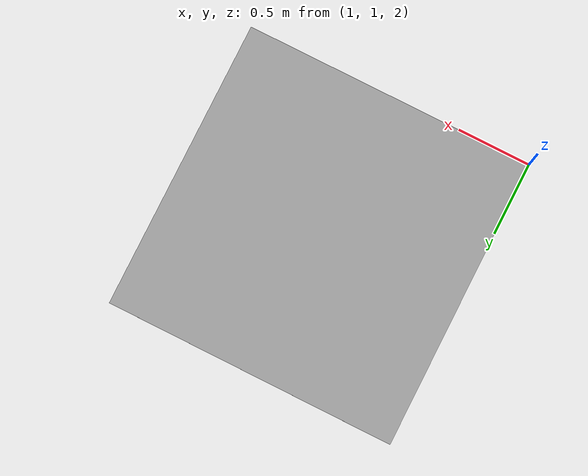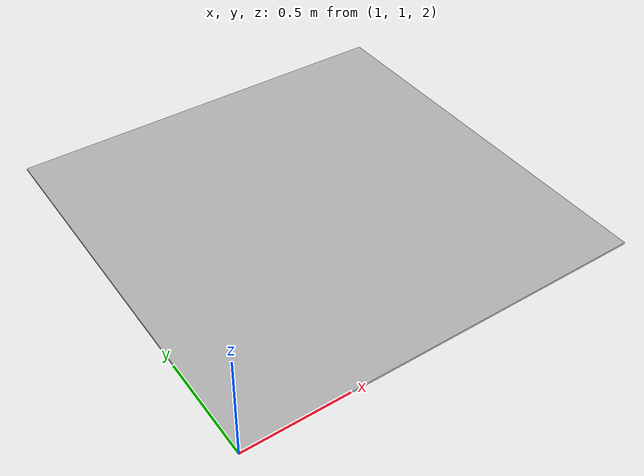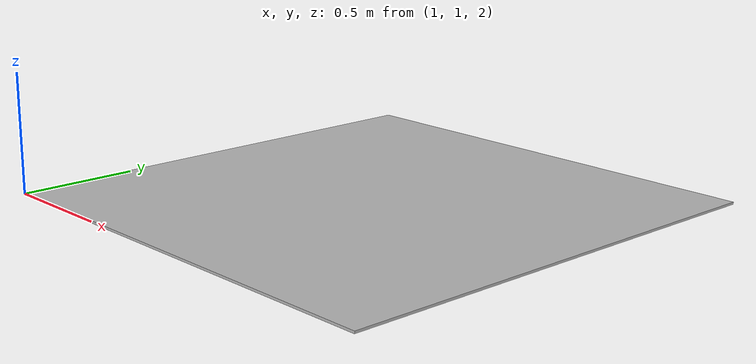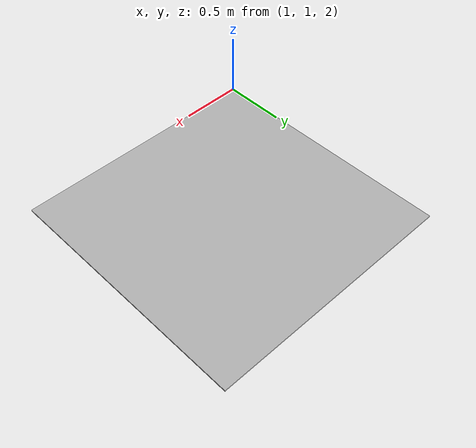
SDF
<?xml version='1.0'?>
<sdf version='1.6'>
  <model name='Apriltag36_11_00000'>
    <link name='main'>
    <pose frame=''>2 2 2 0 0 0</pose>
      <visual name='main_Visual'>
        <geometry>
          <box>
          <size>2.0 2.0 0.01</size>
          </box>
        </geometry>
           <material>
          <script>
            <uri>model://Apriltag36_11_00000/materials/scripts</uri>
            <uri>model://Apriltag36_11_00000/materials/textures</uri>
            <name>Apriltag36_11_00000</name>
          </script>
        </material>
      </visual>
     </link>
    <static>1</static>
  </model>
</sdf>
